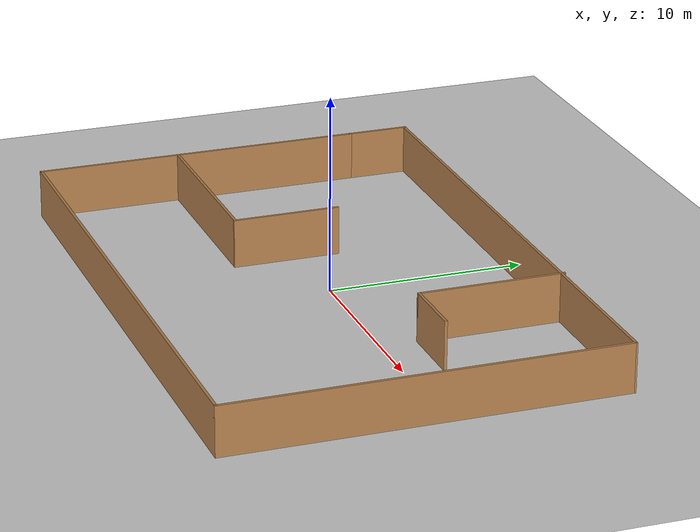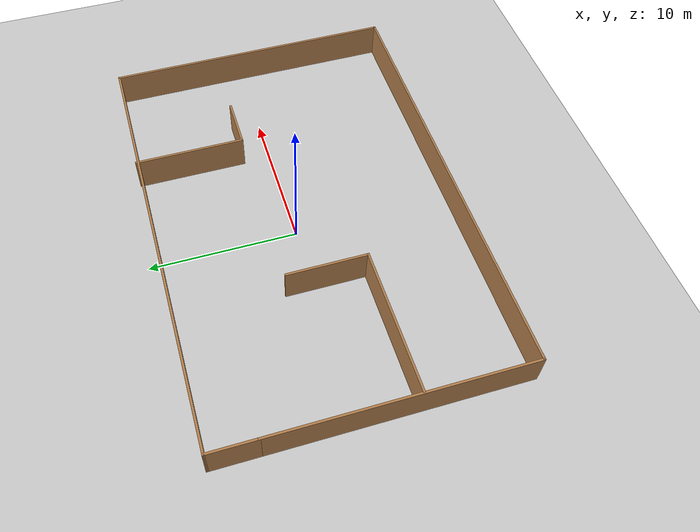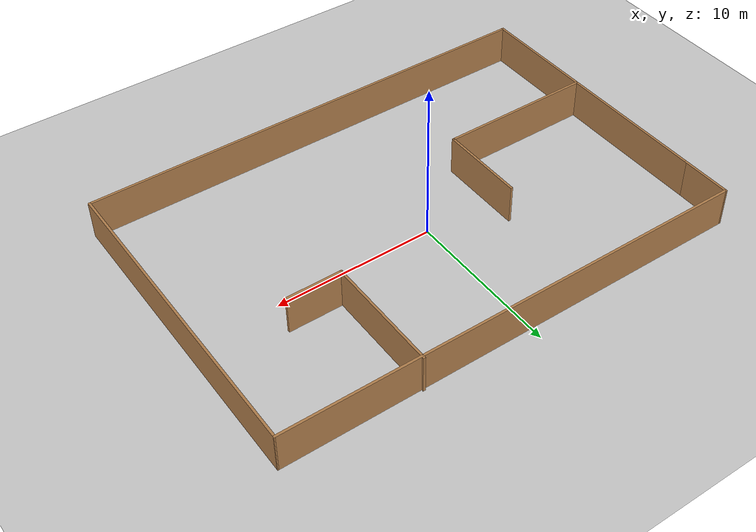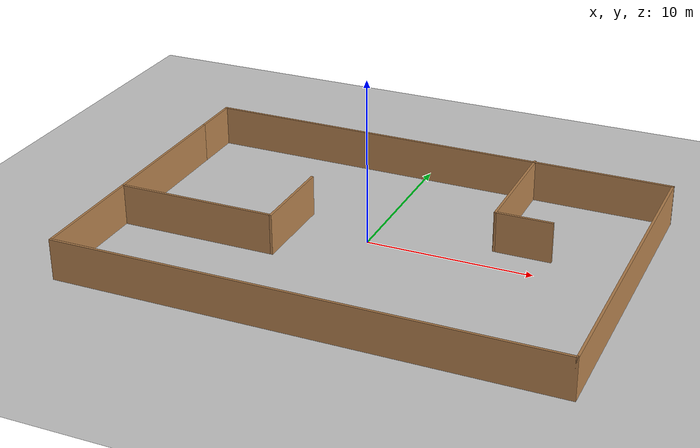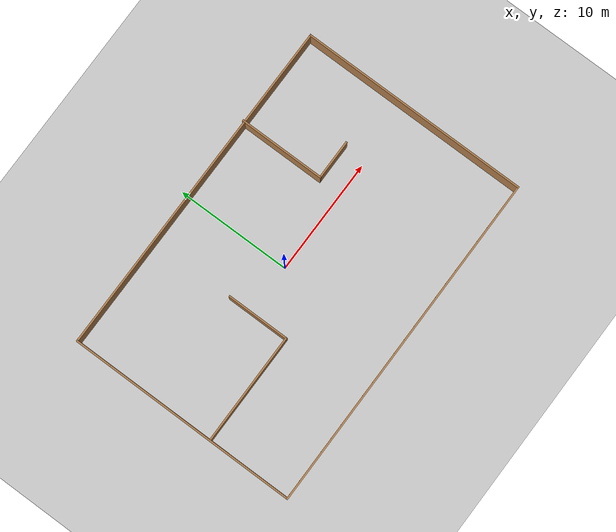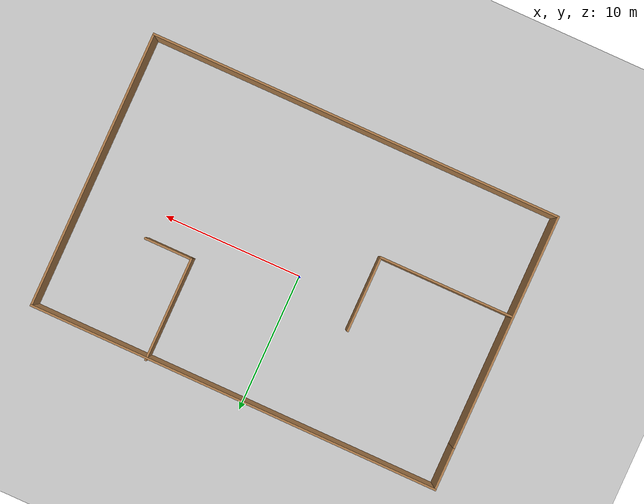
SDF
<sdf version="1.7">
 <world name="default">
  <light name="sun" type="directional">
   <pose>0 0 10 0 -0 0</pose>
   <diffuse>0.8 0.8 0.8 1</diffuse>
   <specular>0.2 0.2 0.2 1</specular>
   <attenuation>
    <range>1000</range>
    <constant>0.9</constant>
    <linear>0.01</linear>
    <quadratic>0.001</quadratic>
   </attenuation>
   <direction>-0.5 0.1 -0.9</direction>
   <spot><inner_angle>0</inner_angle><outer_angle>0</outer_angle><falloff>0</falloff></spot>
  </light>
  <model name="ground_plane">
   <static>1</static>
   <link name="link">
    <collision name="collision">
     <geometry><plane><normal>0 0 1</normal><size>100 100</size></plane></geometry>
     <surface>
      <contact><collide_bitmask>65535</collide_bitmask></contact>
      <friction><ode><mu>100</mu><mu2>50</mu2></ode></friction>
     </surface>
    </collision>
    <visual name="visual">
     <cast_shadows>0</cast_shadows>
     <geometry><plane><normal>0 0 1</normal><size>100 100</size></plane></geometry>
     <material>
      <script><uri>file://media/materials/scripts/gazebo.material</uri><name>Gazebo/Grey</name></script>
     </material>
    </visual>
   </link>
  </model>
  <gravity>0 0 -9.8</gravity>
  <magnetic_field>6e-06 2.3e-05 -4.2e-05</magnetic_field>
  <atmosphere type="adiabatic"/>
  <physics type="ode">
   <max_step_size>0.001</max_step_size>
   <real_time_factor>1</real_time_factor>
   <real_time_update_rate>1000</real_time_update_rate>
  </physics>
  <scene><ambient>0.4 0.4 0.4 1</ambient><background>0.7 0.7 0.7 1</background><shadows>1</shadows></scene>
  <audio><device>default</device></audio>
  <spherical_coordinates>
   <surface_model>EARTH_WGS84</surface_model>
   <latitude_deg>0</latitude_deg>
   <longitude_deg>0</longitude_deg>
   <elevation>0</elevation>
   <heading_deg>0</heading_deg>
  </spherical_coordinates>
  <model name="def_model">
   <pose>0.714446 -0.754018 0 0 -0 0</pose>
   <link name="Wall_0">
    <collision name="Wall_0_Collision">
     <geometry><box><size>17 0.15 2.5</size></box></geometry>
     <pose>0 0 1.25 0 -0 0</pose>
    </collision>
    <visual name="Wall_0_Visual">
     <pose>0 0 1.25 0 -0 0</pose>
     <geometry><box><size>17 0.15 2.5</size></box></geometry>
     <material>
      <script><uri>file://media/materials/scripts/gazebo.material</uri><name>Gazebo/Wood</name></script>
      <ambient>1 1 1 1</ambient>
     </material>
     <meta><layer>0</layer></meta>
    </visual>
    <pose>-14.8 -1.57348 0 0 -0 -1.5708</pose>
   </link>
   <link name="Wall_1">
    <collision name="Wall_1_Collision">
     <geometry><box><size>29.75 0.15 2.5</size></box></geometry>
     <pose>0 0 1.25 0 -0 0</pose>
    </collision>
    <visual name="Wall_1_Visual">
     <pose>0 0 1.25 0 -0 0</pose>
     <geometry><box><size>29.75 0.15 2.5</size></box></geometry>
     <material>
      <script><uri>file://media/materials/scripts/gazebo.material</uri><name>Gazebo/Wood</name></script>
      <ambient>1 1 1 1</ambient>
     </material>
     <meta><layer>0</layer></meta>
    </visual>
    <pose>-0 -9.99848 0 0 -0 0</pose>
   </link>
   <link name="Wall_13">
    <collision name="Wall_13_Collision">
     <geometry><box><size>29.7502 0.15 2.5</size></box></geometry>
     <pose>0 0 1.25 0 -0 0</pose>
    </collision>
    <visual name="Wall_13_Visual">
     <pose>0 0 1.25 0 -0 0</pose>
     <geometry><box><size>29.7502 0.15 2.5</size></box></geometry>
     <material>
      <script><uri>file://media/materials/scripts/gazebo.material</uri><name>Gazebo/Wood</name></script>
      <ambient>1 1 1 1</ambient>
     </material>
     <meta><layer>0</layer></meta>
    </visual>
    <pose>-0 9.90152 0 0 -0 -0.003378</pose>
   </link>
   <link name="Wall_15">
    <collision name="Wall_15_Collision">
     <geometry><box><size>9.75 0.15 2.5</size></box></geometry>
     <pose>0 0 1.25 0 -0 0</pose>
    </collision>
    <visual name="Wall_15_Visual">
     <pose>0 0 1.25 0 -0 0</pose>
     <geometry><box><size>9.75 0.15 2.5</size></box></geometry>
     <material>
      <script><uri>file://media/materials/scripts/gazebo.material</uri><name>Gazebo/Wood</name></script>
      <ambient>1 1 1 1</ambient>
     </material>
     <meta><layer>0</layer></meta>
    </visual>
    <pose>-9.93489 -2.66703 0 0 -0 0</pose>
   </link>
   <link name="Wall_16">
    <collision name="Wall_16_Collision">
     <geometry><box><size>5.5 0.15 2.5</size></box></geometry>
     <pose>0 0 1.25 0 -0 0</pose>
    </collision>
    <visual name="Wall_16_Visual">
     <pose>0 0 1.25 0 -0 0</pose>
     <geometry><box><size>5.5 0.15 2.5</size></box></geometry>
     <material>
      <script><uri>file://media/materials/scripts/gazebo.material</uri><name>Gazebo/Wood</name></script>
      <ambient>1 1 1 1</ambient>
     </material>
     <meta><layer>0</layer></meta>
    </visual>
    <pose>-5.13489 0.007965 0 0 -0 1.5708</pose>
   </link>
   <link name="Wall_18">
    <collision name="Wall_18_Collision">
     <geometry><box><size>7.5 0.15 2.5</size></box></geometry>
     <pose>0 0 1.25 0 -0 0</pose>
    </collision>
    <visual name="Wall_18_Visual">
     <pose>0 0 1.25 0 -0 0</pose>
     <geometry><box><size>7.5 0.15 2.5</size></box></geometry>
     <material>
      <script><uri>file://media/materials/scripts/gazebo.material</uri><name>Gazebo/Wood</name></script>
      <ambient>1 1 1 1</ambient>
     </material>
     <meta><layer>0</layer></meta>
    </visual>
    <pose>6.35071 6.32348 0 0 -0 -1.5708</pose>
   </link>
   <link name="Wall_19">
    <collision name="Wall_19_Collision">
     <geometry><box><size>3.5 0.15 2.5</size></box></geometry>
     <pose>0 0 1.25 0 -0 0</pose>
    </collision>
    <visual name="Wall_19_Visual">
     <pose>0 0 1.25 0 -0 0</pose>
     <geometry><box><size>3.5 0.15 2.5</size></box></geometry>
     <material>
      <script><uri>file://media/materials/scripts/gazebo.material</uri><name>Gazebo/Wood</name></script>
      <ambient>1 1 1 1</ambient>
     </material>
     <meta><layer>0</layer></meta>
    </visual>
    <pose>8.02571 2.64848 0 0 -0 0</pose>
   </link>
   <link name="Wall_2">
    <collision name="Wall_2_Collision">
     <geometry><box><size>20 0.15 2.5</size></box></geometry>
     <pose>0 0 1.25 0 -0 0</pose>
    </collision>
    <visual name="Wall_2_Visual">
     <pose>0 0 1.25 0 -0 0</pose>
     <geometry><box><size>20 0.15 2.5</size></box></geometry>
     <material>
      <script><uri>file://media/materials/scripts/gazebo.material</uri><name>Gazebo/Wood</name></script>
      <ambient>1 1 1 1</ambient>
     </material>
     <meta><layer>0</layer></meta>
    </visual>
    <pose>14.8 -0.073477 0 0 -0 1.5708</pose>
   </link>
   <link name="Wall_4">
    <collision name="Wall_4_Collision">
     <geometry><box><size>3.25 0.15 2.5</size></box></geometry>
     <pose>0 0 1.25 0 -0 0</pose>
    </collision>
    <visual name="Wall_4_Visual">
     <pose>0 0 1.25 0 -0 0</pose>
     <geometry><box><size>3.25 0.15 2.5</size></box></geometry>
     <material>
      <script><uri>file://media/materials/scripts/gazebo.material</uri><name>Gazebo/Wood</name></script>
      <ambient>1 1 1 1</ambient>
     </material>
     <meta><layer>0</layer></meta>
    </visual>
    <pose>-14.8 8.40152 0 0 -0 1.5708</pose>
   </link>
   <static>1</static>
  </model>
 </world>
</sdf>
